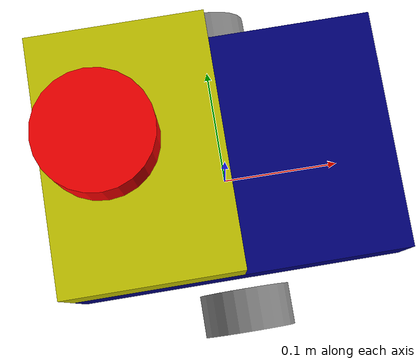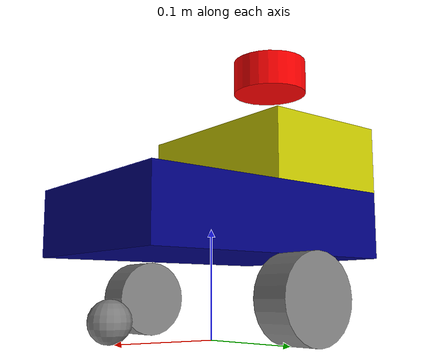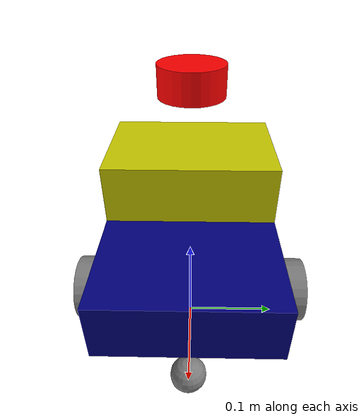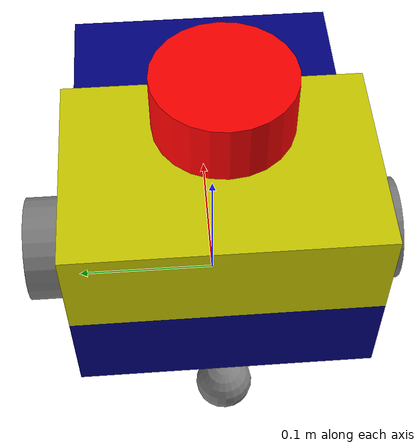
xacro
<?xml version="1.0"?>
<robot name="my_robot" xmlns:xacro="http://www.ros.org/wiki/xacro">

    <xacro:arg name="use_ros2_control" default="false"/>
    <xacro:arg name="sim_mode" default="true"/>
    <xacro:include filename="common_properties.xacro" />
    <xacro:include filename="mobile_base_v2.xacro" />
    <xacro:include filename="mobile_base_gazebo.xacro" />
    <!-- sensor -->

    <!-- simulate lidar with 24 data elements -->
    <!-- simulate lidar with full data -->
    <xacro:include filename="lidar_v3.xacro" />
    <!-- load control that is gazebo_control or ros2_control  -->
    <xacro:if value="$(arg use_ros2_control)">
        <xacro:include filename="ros2_control_gazebo.xacro"/>
    </xacro:if>
    <xacro:unless value="$(arg use_ros2_control)">
        <xacro:include filename="gazebo_control.xacro"/>
    </xacro:unless>
</robot>

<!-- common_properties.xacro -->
<robot xmlns:xacro="http://www.ros.org/wiki/xacro">

    <material name="blue">
        <color rgba="0 0 0.5 1" />
    </material>

    <material name="grey">
        <color rgba="0.5 0.5 0.5 1" />
    </material>

    <material name="yellow">
        <color rgba="0.8 0.8 0.0 1.0" />
    </material>

    <material name="red">  <!-- Đặt tên cho màu -->
        <color rgba="1.0 0.0 0.0 1.0"/>  <!-- Màu đỏ (R:1, G:0, B:0, A:1) -->
    </material>
    <xacro:macro name="box_inertia" params="m l w h xyz rpy">
        <inertial>
            <origin xyz="${xyz}" rpy="${rpy}" />
            <mass value="${m}" />
            <inertia ixx="${(m/12) * (h*h + l*l)}" ixy="0" ixz="0"
                     iyy="${(m/12) * (w*w + l*l)}" iyz="0"
                     izz="${(m/12) * (w*w + h*h)}" />
        </inertial>
    </xacro:macro>

    <xacro:macro name="cylinder_inertia" params="m r h xyz rpy">
        <inertial>
            <origin xyz="${xyz}" rpy="${rpy}" />
            <mass value="${m}" />
            <inertia ixx="${(m/12) * (3*r*r + h*h)}" ixy="0" ixz="0"
                     iyy="${(m/12) * (3*r*r + h*h)}" iyz="0"
                     izz="${(m/2) * (r*r)}" />
        </inertial>
    </xacro:macro>

    <xacro:macro name="sphere_inertia" params="m r xyz rpy">
        <inertial>
            <origin xyz="${xyz}" rpy="${rpy}" />
            <mass value="${m}" />
            <inertia ixx="${(2/5) * m * r * r}" ixy="0" ixz="0"
                     iyy="${(2/5) * m * r * r}" iyz="0"
                     izz="${(2/5) * m * r * r}" />
        </inertial>
    </xacro:macro>

</robot>

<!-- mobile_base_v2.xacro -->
<robot xmlns:xacro="http://www.ros.org/wiki/xacro">

    <!-- declare detail properties of diff bot -->

    <xacro:property name="base_length" value="0.25" />
    <xacro:property name="base_width" value="0.18" />
    <xacro:property name="base_height" value="0.062" />
    <xacro:property name="wheel_radius" value="0.037" />
    <xacro:property name="wheel_length" value="0.034" />
    <xacro:property name="wheel_y" value="0.115" />
    <xacro:property name="wheel_caster" value="0.105" />
    <xacro:property name="lidar_pos_x" value="0.048" />
    <xacro:property name="lidar_height" value="0.065" />
    <xacro:property name="imu_x" value="0.0287" />
    <xacro:property name="imu_y" value="0.06" />
    <xacro:property name="imu_z" value="0.086" />

    <!-- declare link of diff bot -->

    <link name="base_footprint" />

    <link name="base_link">
        <visual>
            <geometry>
                <box size="${base_length} ${base_width} ${base_height}" />
            </geometry>
            <origin xyz="0 0 ${base_height / 2.0}" rpy="0 0 0" />
            <material name="blue" />
        </visual>
        <collision>
            <geometry>
                <box size="${base_length} ${base_width} ${base_height}" />
            </geometry>
            <origin xyz="0 0 ${base_height / 2.0}" rpy="0 0 0" />
        </collision>
        <xacro:box_inertia m="5.0" l="${2*base_length}" w="${2*base_width}" h="${2*base_height}"
                           xyz="0 0 ${base_height / 2.0}" rpy="0 0 0" />
    </link>

    <xacro:macro name="wheel_link" params="prefix">
        <link name="${prefix}_wheel_link">
            <visual>
                <geometry>
                    <cylinder radius="${wheel_radius}" length="${wheel_length}" />
                </geometry>
                <origin xyz="0 0 0" rpy="${pi / 2.0} 0 0" />
                <material name="grey" />
            </visual>
            <collision>
                <geometry>
                    <cylinder radius="${wheel_radius}" length="${wheel_length}" />
                </geometry>
                <origin xyz="0 0 0" rpy="${pi / 2.0} 0 0" />
            </collision>
            <xacro:cylinder_inertia m="1.0" r="${2*wheel_radius}" h="${2*wheel_length}"
                                    xyz="0 0 0" rpy="${pi / 2.0} 0 0" />
        </link>
    </xacro:macro>

    <xacro:wheel_link prefix="right" />
    <xacro:wheel_link prefix="left" />

    <link name="front_caster_wheel_link">
        <visual>
            <geometry>
                <sphere radius="${wheel_radius / 2.0}" />
            </geometry>
            <origin xyz="0 0 0" rpy="0 0 0" />
            <material name="grey" />
        </visual>
        <collision>
            <geometry>
                <sphere radius="${wheel_radius / 2.0}" />
            </geometry>
            <origin xyz="0 0 0" rpy="0 0 0" />
        </collision>
        <xacro:sphere_inertia m="0.5" r="${2*wheel_radius / 2.0}"
                              xyz="0 0 0" rpy="0 0 0" />
    </link>

    <link name="behind_caster_wheel_link">
        <visual>
            <geometry>
                <sphere radius="${wheel_radius / 2.0}" />
            </geometry>
            <origin xyz="0 0 0" rpy="0 0 0" />
            <material name="grey" />
        </visual>
        <collision>
            <geometry>
                <sphere radius="${wheel_radius / 2.0}" />
            </geometry>
            <origin xyz="0 0 0" rpy="0 0 0" />
        </collision>
        <xacro:sphere_inertia m="0.5" r="${2*wheel_radius / 2.0}"
                              xyz="0 0 0" rpy="0 0 0" />
    </link>

    <link name="third_floor_link">
        <visual>
            <geometry>
                <box size="${base_length/2} ${base_width} ${base_height}" />
            </geometry>
            <origin xyz="0 0 0" rpy="0 0 0" />
            <material name="yellow" />
        </visual>
        <collision>
            <geometry>
                <box size="${base_length/2} ${base_width} ${base_height}" />
            </geometry>
            <origin xyz="0 0 0" rpy="0 0 0" />
        </collision>
        <xacro:box_inertia m="5.0" l="${base_length}" w="${2*base_width}" h="${2*base_height}"
                           xyz="0 0 0" rpy="0 0 0" />
    </link>

    <link name="imu_link">
        <visual>
            <origin xyz="0.0 0.0 0.0" rpy="0.0 0.0 0.0"/>
            <geometry>
                <box size="0.0208 0.0158 0.0016"/>
            </geometry>
        </visual>
        <collision>
            <origin xyz="0.0 0.0 0.0" rpy="0.0 0.0 0.0"/>
            <geometry>
            <box size="0.0208 0.0158 0.0016"/>
            </geometry>
        </collision>
    </link>
    <!-- declare joint of diff bot -->

    <joint name="base_joint" type="fixed">
        <parent link="base_footprint" />
        <child link="base_link" />
        <origin xyz="0 0 ${2*wheel_radius}" rpy="0 0 0"/>
    </joint>

    <joint name="base_right_wheel_joint" type="continuous">
        <parent link="base_link" />
        <child link="right_wheel_link" />
        <origin xyz="0 ${-wheel_y} ${-wheel_radius}" rpy="0 0 ${pi}" />
        <axis xyz="0 -1 0" />
    </joint>

    <joint name="base_left_wheel_joint" type="continuous">
        <parent link="base_link" />
        <child link="left_wheel_link" />
        <origin xyz="0 ${wheel_y} ${-wheel_radius}" rpy="0 0 0" />
        <axis xyz="0 1 0" />
    </joint>

    <joint name="base_front_caster_wheel_joint" type="fixed">
        <parent link="base_link" />
        <child link="front_caster_wheel_link" />
        <origin xyz="${wheel_caster} 0 ${-3/2*wheel_radius}" rpy="0 0 0" />
    </joint>

    <joint name="base_behind_caster_wheel_joint" type="fixed">
        <parent link="base_link" />
        <child link="behind_caster_wheel_link" />
        <origin xyz="${-wheel_caster} 0 ${-3/2*wheel_radius}" rpy="0 0 0" />
    </joint>

    <joint name="third_floor_joint" type="fixed">
        <parent link="base_link"/>
        <child link="third_floor_link"/>
        <origin xyz="${-base_length/4} 0.0 ${1.5*base_height}" rpy="0.0 0.0 0.0"/>
    </joint>

    <joint name="imu_joint" type="fixed">
        <parent link="base_link"/>
        <child link="imu_link"/>
        <origin xyz="${imu_x - base_length/2} ${-imu_y} ${imu_z}" rpy="0.0 0.0 0.0"/>
    </joint>
</robot>

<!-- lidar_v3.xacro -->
<robot xmlns:xacro="http://www.ros.org/wiki/xacro">

    <joint name="lidar_joint" type="fixed">
        <parent link="base_link"/>
        <child link="laser_frame"/>
        <origin xyz="${lidar_pos_x - base_length/2} 0.0 ${2*base_height + lidar_height}" rpy="0.0 0.0 0.0"/>
    </joint>
    <link name="laser_frame">
        <visual>
            <geometry>
                <cylinder radius="${wheel_radius}" length="${wheel_length}" />
            </geometry>
            <origin xyz="0 0 0" rpy="0 0 0" />
            <material name="red" />
        </visual>
            <collision>
            <geometry>
                <cylinder radius="${wheel_radius}" length="${wheel_length}" />
            </geometry>
            <origin xyz="0 0 0" rpy="0 0 0" />
            </collision>
            <xacro:cylinder_inertia m="1.0" r="${2*wheel_radius}" h="${2*wheel_length}"
                                        xyz="0 0 0" rpy="0 0 0" />
    </link>

    <xacro:if value="$(arg sim_mode)">
        <gazebo reference="laser_frame">
            <material>Gazebo/Red</material>

            <sensor name="laser" type="ray">
                <pose> 0 0 0 0 0 0 </pose>
                <visualize>true</visualize>
                <update_rate>10</update_rate>
                <ray>
                    <scan>
                        <horizontal>
                            <samples>360</samples>
                            <min_angle>-3.14</min_angle>
                            <max_angle>3.14</max_angle>
                        </horizontal>
                    </scan>
                    <range>
                        <min>0.3</min>
                        <max>12</max>
                    </range>
                </ray>
                <plugin name="laser_controller" filename="libgazebo_ros_ray_sensor.so">
                    <ros>
                        <argument>~/out:=scan</argument>
                    </ros>
                    <output_type>sensor_msgs/LaserScan</output_type>
                    <frame_name>laser_frame</frame_name>
                </plugin>
            </sensor>
        </gazebo>
    </xacro:if>
</robot>
